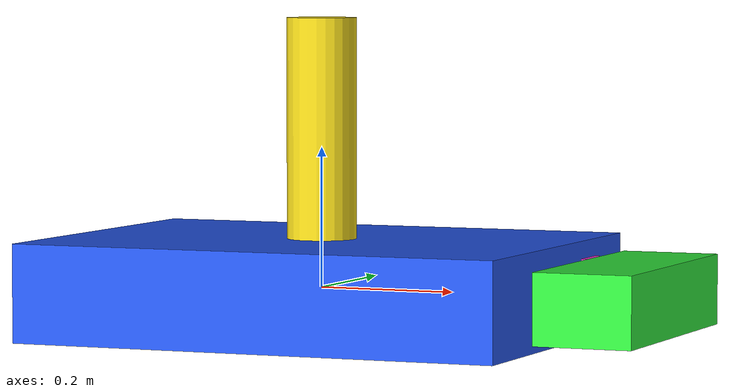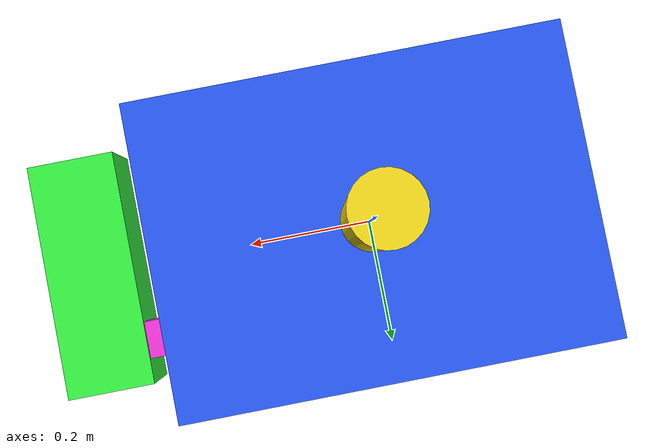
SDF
<?xml version="1.0"?>
<sdf version="1.9">
  <!-- World pose is set by ros_gz_sim create (-x -y -z -Y). Keep this at origin. -->
  <model name="simple_drone">
    <pose>0 0 0 0 0 0</pose>

    <link name="base_link">
      <pose>0 0 0 0 0 0</pose>

      <inertial>
        <mass>1.2</mass>
        <inertia>
          <ixx>0.04</ixx>
          <iyy>0.04</iyy>
          <izz>0.06</izz>
          <ixy>0.0</ixy>
          <ixz>0.0</ixz>
          <iyz>0.0</iyz>
        </inertia>
      </inertial>

      <collision name="body_collision">
        <geometry>
          <box>
            <size>0.72 0.52 0.14</size>
          </box>
        </geometry>
      </collision>

      <visual name="body_visual">
        <geometry>
          <box>
            <size>0.72 0.52 0.14</size>
          </box>
        </geometry>
        <material>
          <ambient>0.15 0.35 0.95 1.0</ambient>
          <diffuse>0.15 0.35 0.95 1.0</diffuse>
          <specular>0.2 0.2 0.2 1.0</specular>
        </material>
      </visual>

      <!-- Forward (+X) nose marker: easy to see heading in Gazebo. -->
      <visual name="nose_marker">
        <pose>0.46 0 0 0 0 0</pose>
        <geometry>
          <box>
            <size>0.14 0.38 0.10</size>
          </box>
        </geometry>
        <material>
          <ambient>0.2 0.95 0.25 1.0</ambient>
          <diffuse>0.2 0.95 0.25 1.0</diffuse>
        </material>
      </visual>

      <!-- Tall mast so the vehicle is visible from above / distance. -->
      <visual name="mast">
        <pose>0 0 0.16 0 0 0</pose>
        <geometry>
          <cylinder>
            <radius>0.05</radius>
            <length>0.45</length>
          </cylinder>
        </geometry>
        <material>
          <ambient>0.95 0.85 0.1 1.0</ambient>
          <diffuse>0.95 0.85 0.1 1.0</diffuse>
        </material>
      </visual>

      <!-- Small marker next to sensor line-of-sight (visual only). -->
      <visual name="camera_bezel">
        <pose>0.36 0.12 0.02 0 0 0</pose>
        <geometry>
          <box>
            <size>0.06 0.06 0.05</size>
          </box>
        </geometry>
        <material>
          <ambient>0.95 0.2 0.85 1.0</ambient>
          <diffuse>0.95 0.2 0.85 1.0</diffuse>
        </material>
      </visual>

      <sensor name="rgbd_camera" type="rgbd_camera">
        <!-- r p y: small pitch toward mid-field 3D props (walls stay in upper image). -->
        <pose>0.30 0 0.055 0 -0.05 0</pose>
        <camera>
          <horizontal_fov>1.0472</horizontal_fov>
          <image>
            <width>640</width>
            <height>480</height>
            <format>R8G8B8</format>
          </image>
          <clip>
            <near>0.10</near>
            <far>10.0</far>
          </clip>
        </camera>
        <always_on>true</always_on>
        <!-- Slightly lower rate helps VO keep up in sim (still bridged at usable Hz). -->
        <update_rate>10</update_rate>
        <visualize>false</visualize>
        <topic>rgbd_camera</topic>
        <enable_metrics>true</enable_metrics>
      </sensor>
    </link>

    <plugin filename="gz-sim-velocity-control-system" name="gz::sim::systems::VelocityControl">
      <topic>/cmd_vel</topic>
    </plugin>

    <plugin filename="gz-sim-pose-publisher-system" name="gz::sim::systems::PosePublisher">
      <publish_link_pose>false</publish_link_pose>
      <publish_model_pose>true</publish_model_pose>
      <publish_nested_model_pose>false</publish_nested_model_pose>
      <use_pose_vector_msg>false</use_pose_vector_msg>
    </plugin>
  </model>
</sdf>
